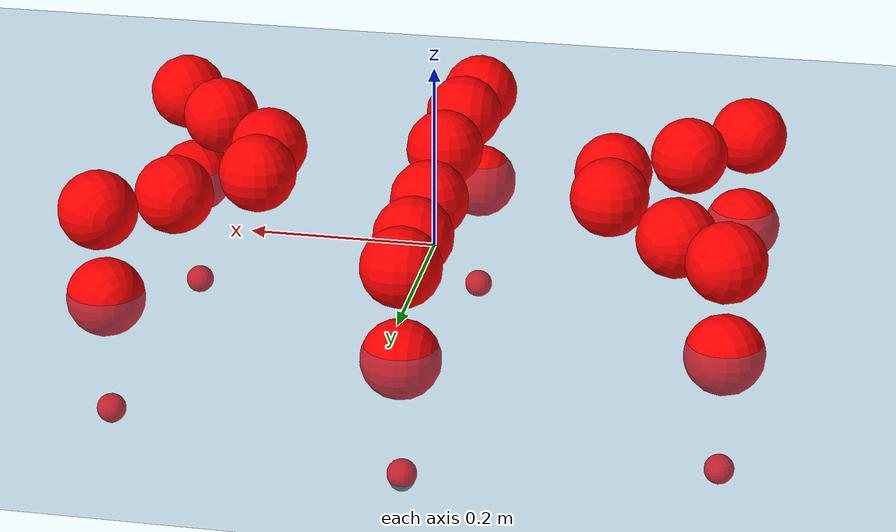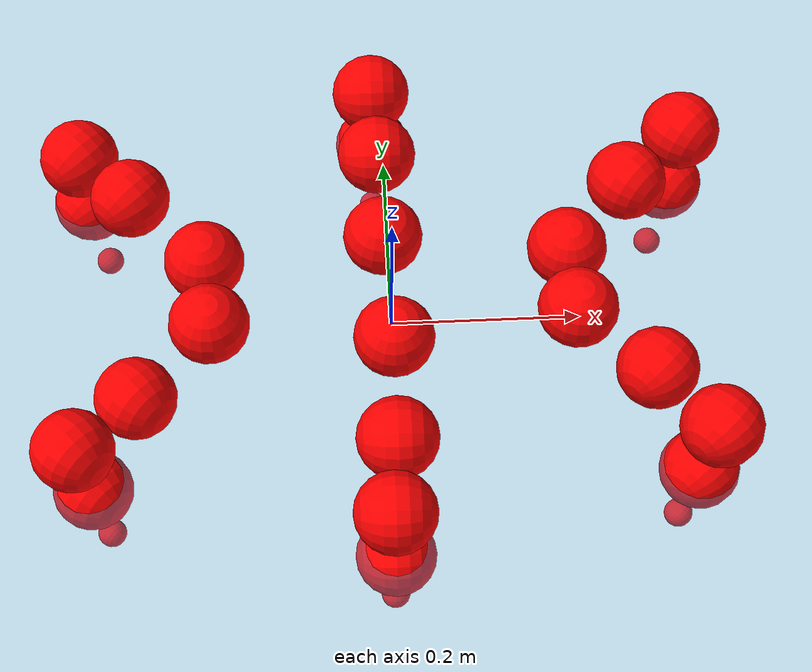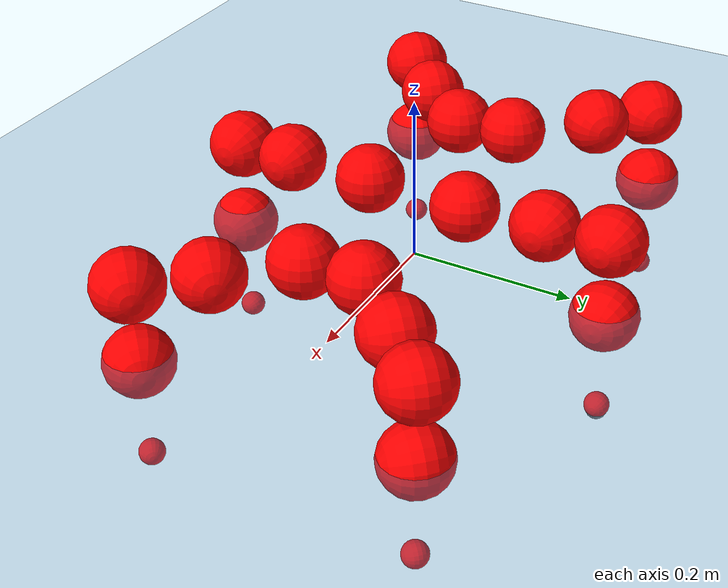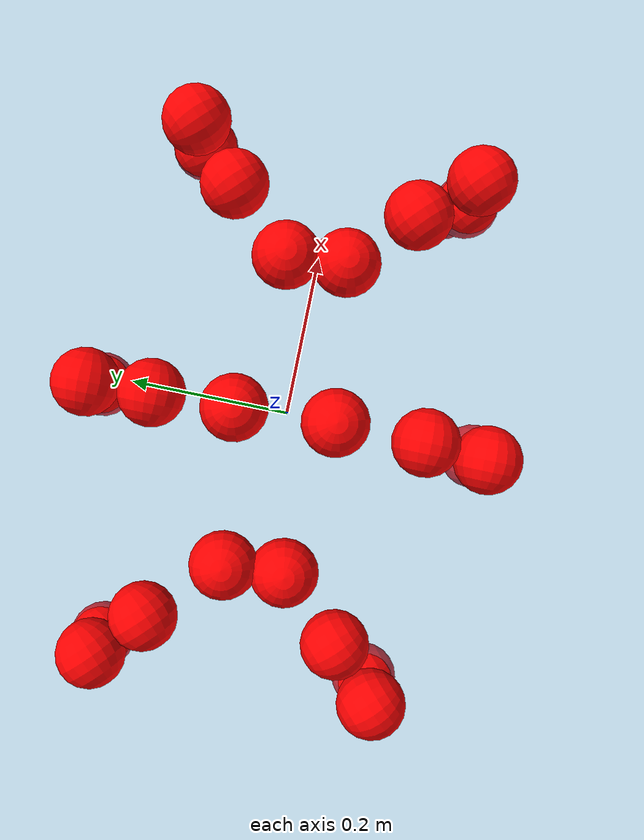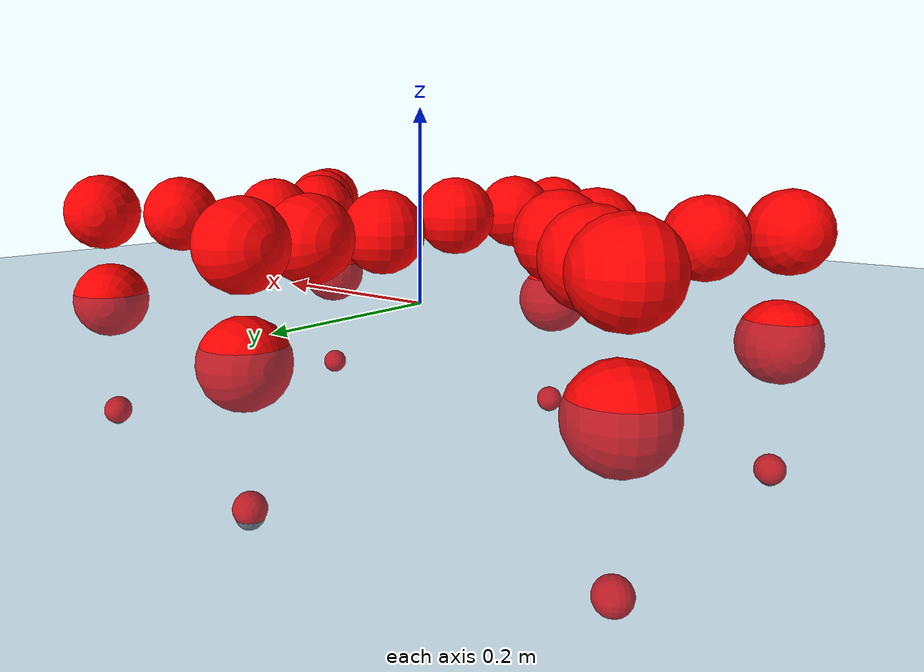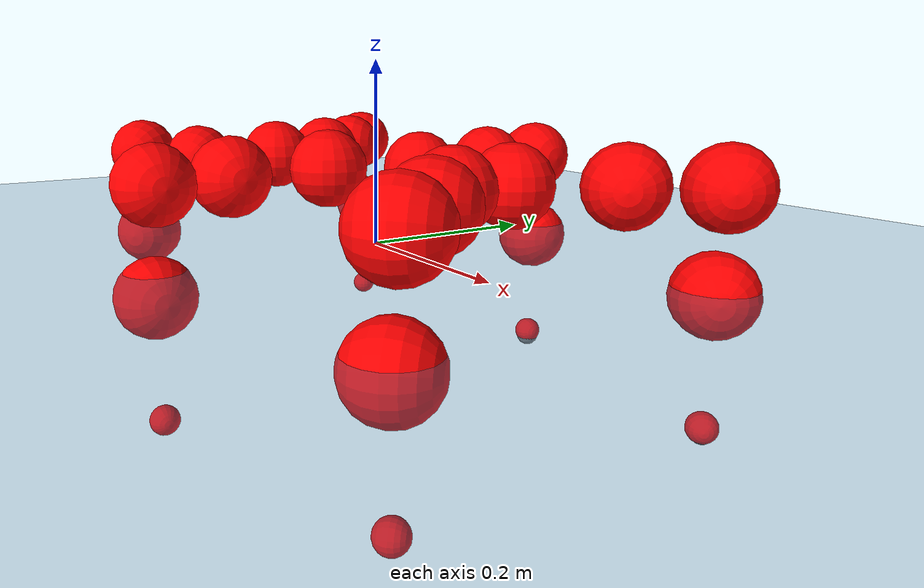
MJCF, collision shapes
<mujoco model="Golem">
  <compiler angle="radian" assetdir="assets" balanceinertia="true" inertiafromgeom="false"/>

  <option timestep="0.005" density="1.2" viscosity="2e-05"/>

  <size nkey="1"/>

  <visual>
    <quality shadowsize="8192"/>
    <map shadowclip="0.5"/>
  </visual>

  <default>
    <default class="/">
      <joint armature="0.01" damping="0.01" frictionloss="0.01"/>
      <geom contype="0" conaffinity="0" group="1" solref="-1000 -80"/>
      <site size="0.01 0.005 0.005" group="5"/>
      <general forcelimited="true" biastype="affine" gainprm="25" biasprm="0 -25 -0.5"/>
      <default class="visual">
        <geom type="mesh" group="2"/>
      </default>
      <default class="collision">
        <geom group="3"/>
      </default>
      <default class="foot">
        <geom size="0.01 0 0" condim="6" group="4" priority="1" solimp="0.015 1 0.01"/>
      </default>
      <default class="reward_collision_sphere">
        <geom group="5" rgba="1 0 0 1"/>
      </default>
    </default>
  </default>

  <asset>
    <texture type="skybox" colorspace="auto" name="//unnamed_texture_0" builtin="gradient" rgb1="0.95 0.95 0.95" rgb2="0.95 0.95 0.95" width="100" height="600"/>
    <texture type="2d" colorspace="auto" name="texplane" builtin="checker" rgb1="0.345 0.575 0.748" rgb2="0.345 0.575 0.748" markrgb="1 1 1" width="512" height="512"/>
    <material name="MatPlane" class="/" texture="texplane" texuniform="true" texrepeat="2 2" specular="0.9"/>
    <mesh name="body" class="/" file="body.stl" scale="0.001 0.001 0.001"/>
    <mesh name="coxa" class="/" file="coxa.stl" scale="0.001 0.001 0.001"/>
    <mesh name="femur" class="/" file="femur.stl" scale="0.001 0.001 0.001"/>
    <mesh name="tibia" class="/" file="tibia.stl" scale="0.001 0.001 0.001"/>
    <mesh name="tarsus" class="/" file="tarsus.stl" scale="0.001 0.001 0.001"/>
  </asset>

  <worldbody>
    <geom name="floor" class="/" size="100 100 0.125" type="plane" group="0" material="MatPlane"/>
    <light name="toplight_shadow" class="/" pos="0 0 5" dir="0.0990148 0.0990148 -0.990148" type="directional" ambient="0.04 0.04 0.04" diffuse="0.55 0.55 0.55" specular="0.12 0.12 0.12"/>
    <light name="toplight_fill" class="/" pos="0 0 5" dir="0.0990148 0.0990148 -0.990148" type="directional" castshadow="false" ambient="0.04 0.04 0.04" diffuse="0.3 0.3 0.3" specular="0.08 0.08 0.08"/>
    <body name="trunk" pos="0.000120388 0.00195341 0.0066308" quat="1 7.47895e-05 2.48533e-05 -0.00022108">
      <inertial pos="-0.000382535 -0.000130507 -0.00629968" quat="0.999901 0.00584181 0.0127122 0.001277" mass="3.9442" diaginertia="0.027776 0.00194056 0.021706"/>
      <joint name="//unnamed_joint_0" type="free"/>
      <geom name="//unnamed_geom_1" class="/" pos="0 0 0.0742647" quat="1 0 0 0" type="mesh" rgba="0.9 0.9 0.9 1" mesh="body"/>
      <site name="imu" class="/" pos="0.166002 -0.0107798 0.124166" size="0.0102735"/>
      <camera name="track" class="/" pos="0 -1.44421 0" quat="0.707107 0.707107 0 0" mode="trackcom"/>
      <camera name="ego_camera" class="/" pos="0.155941 0 0.116039" quat="-0.5 -0.5 0.5 0.5"/>
      <body name="coxa_RR" pos="-0.210575 -0.0620737 0.0776667" quat="0.382363 -0.000679557 -0.000391541 -0.924012">
        <inertial pos="0.000241198 0.00636855 0.00230232" quat="0.999945 0.00307152 0.00957193 0.00283691" mass="0.236847" diaginertia="0.0281422 0.00202566 0.0234913"/>
        <joint name="coxa_joint_RR" class="/" pos="0 0 0" axis="-0.0241065 0.0324101 -0.999184" range="-3.1463 3.18422" armature="0.0108526" damping="0.0184221" frictionloss="0.0114313"/>
        <geom name="//unnamed_geom_2" class="/" type="mesh" rgba="0.2 0.2 0.2 1" mesh="coxa"/>
        <geom name="//unnamed_geom_3" class="reward_collision_sphere" size="0.0410938" pos="-0.0359864 0 0"/>
        <body name="femur_RR" pos="0.0686918 0.00264176 -0.00726399" quat="0.49952 -0.499418 0.500249 0.500811">
          <inertial pos="-0.00221323 -0.00116251 0.000874228" quat="1 -1.25362e-07 3.24029e-07 -2.75941e-07" mass="0.209526" diaginertia="0.023969 0.00192188 0.0206581"/>
          <joint name="femur_joint_RR" class="/" pos="0 0 0" axis="0.000370015 -0.000301342 -1" range="-3.10309 3.24917" armature="0.0113996" damping="0.0311773" frictionloss="0.00891038"/>
          <geom name="//unnamed_geom_4" class="/" type="mesh" rgba="0.9 0.9 0.9 1" mesh="femur"/>
          <geom name="//unnamed_geom_5" class="reward_collision_sphere" size="0.0410938"/>
          <body name="tibia_RR" pos="-0.00561856 -0.0804263 -0.00225323" quat="0.00032607 1 0.000108501 -2.66858e-05">
            <inertial pos="0.00464575 0.00179407 -0.000273131" quat="0.999874 -0.0151295 0.00261227 0.0040245" mass="0.21652" diaginertia="0.0252001 0.00186063 0.0198856"/>
            <joint name="tibia_joint_RR" class="/" pos="0 0 0" axis="-0.00299994 -0.00175494 0.999994" range="-3.01595 3.12749" armature="0.0116656" damping="0.0172982" frictionloss="0.0113916"/>
            <geom name="//unnamed_geom_6" class="/" type="mesh" rgba="0.2 0.2 0.2 1" mesh="tibia"/>
            <geom name="//unnamed_geom_7" class="reward_collision_sphere" size="0.0410938"/>
            <body name="tarsus_RR" pos="0.105816 -0.00238782 -0.00170509" quat="1 0.000105696 -0.000585578 0.000567312">
              <inertial pos="0.0763969 -0.00519208 0.00282955" quat="0.499546 0.503198 0.498158 0.499082" mass="0.224024" diaginertia="0.0252429 0.00200158 0.021424"/>
              <joint name="tarsus_joint_RR" class="/" pos="0 0 0" axis="-0.00925359 -6.91731e-05 0.999957" stiffness="0.0349186" range="-3.08968 3.1291" armature="0.00858597" damping="0.0182168" frictionloss="0.00845029"/>
              <geom name="//unnamed_geom_8" class="/" type="mesh" rgba="0.9 0.9 0.9 1" mesh="tarsus"/>
              <geom name="foot_1" class="foot" size="0.0110988" pos="0.134349 0 0" quat="0 -0.707107 0 0.707107"/>
              <geom name="//unnamed_geom_10" class="reward_collision_sphere" size="0.0410938"/>
              <geom name="//unnamed_geom_11" class="reward_collision_sphere" size="0.0154102" pos="0.128951 0 0"/>
              <site name="foot_1" class="foot" pos="0.134349 0 0" quat="0 -0.707107 0 0.707107" size="0.0102735"/>
            </body>
          </body>
        </body>
      </body>
      <body name="coxa_RM" pos="-0.000370419 -0.0965568 0.0808685" quat="0.705369 0.00148277 0.00208978 -0.708836">
        <inertial pos="0.00478908 -0.000394315 4.61662e-05" quat="0.999936 -0.00109442 0.0100425 0.00510224" mass="0.221984" diaginertia="0.0265792 0.0020297 0.0204634"/>
        <joint name="coxa_joint_RM" class="/" pos="0 0 0" axis="-0.00326543 0.00244233 -0.999992" range="-2.99405 3.14167" armature="0.00954555" damping="0.00409149" frictionloss="0.0100061"/>
        <geom name="//unnamed_geom_12" class="/" type="mesh" rgba="0.2 0.2 0.2 1" mesh="coxa"/>
        <geom name="//unnamed_geom_13" class="reward_collision_sphere" size="0.0410938" pos="-0.0359864 0 0"/>
        <body name="femur_RM" pos="0.0726391 -0.00104477 -0.000985641" quat="0.498569 -0.499034 0.50062 0.501771">
          <inertial pos="-0.00024245 -0.000574784 0.000428854" quat="0.999705 0.020334 0.00228196 0.013101" mass="0.204834" diaginertia="0.0237445 0.001952 0.0195359"/>
          <joint name="femur_joint_RM" class="/" pos="0 0 0" axis="-0.00560746 0.00665464 -0.999962" stiffness="0.031503" range="-3.15897 3.1383" armature="0.0114176" damping="0.0162093" frictionloss="0.00999555"/>
          <geom name="//unnamed_geom_14" class="/" type="mesh" rgba="0.9 0.9 0.9 1" mesh="femur"/>
          <geom name="//unnamed_geom_15" class="reward_collision_sphere" size="0.0410938"/>
          <body name="tibia_RM" pos="0.00246325 -0.0757204 -0.00518324" quat="0.000383387 0.999999 -0.000340911 0.00112951">
            <inertial pos="-0.00166755 -0.00792793 0.00189228" quat="0.999951 -0.00445704 0.00788687 -0.00405951" mass="0.20073" diaginertia="0.0232025 0.00180077 0.0190889"/>
            <joint name="tibia_joint_RM" class="/" pos="0 0 0" axis="0.00658347 -0.00175958 0.999977" range="-3.18995 3.30178" armature="0.00984636" damping="0.0346762" frictionloss="0.0111971"/>
            <geom name="//unnamed_geom_16" class="/" type="mesh" rgba="0.2 0.2 0.2 1" mesh="tibia"/>
            <geom name="//unnamed_geom_17" class="reward_collision_sphere" size="0.0410938"/>
            <body name="tarsus_RM" pos="0.110372 0.00550557 -0.000721232" quat="0.999999 0.000991042 0.000574055 -0.000880001">
              <inertial pos="0.0724707 -0.00677842 0.00107424" quat="0.500411 0.499188 0.500137 0.500263" mass="0.244846" diaginertia="0.0257009 0.00208339 0.0218729"/>
              <joint name="tarsus_joint_RM" class="/" pos="0 0 0" axis="0.00156967 -0.00485581 0.999987" range="-3.1573 3.09717" armature="0.00959784" damping="0.00380357" frictionloss="0.0101062"/>
              <geom name="//unnamed_geom_18" class="/" type="mesh" rgba="0.9 0.9 0.9 1" mesh="tarsus"/>
              <geom name="foot_2" class="foot" size="0.0105227" pos="0.134349 0 0" quat="0 -0.707107 0 0.707107"/>
              <geom name="//unnamed_geom_20" class="reward_collision_sphere" size="0.0410938"/>
              <geom name="//unnamed_geom_21" class="reward_collision_sphere" size="0.0154102" pos="0.128951 0 0"/>
              <site name="foot_2" class="foot" pos="0.134349 0 0" quat="0 -0.707107 0 0.707107" size="0.0102735"/>
            </body>
          </body>
        </body>
      </body>
      <body name="coxa_RF" pos="0.211909 -0.0608272 0.0797361" quat="0.923986 -0.000828507 0.000393556 -0.382424">
        <inertial pos="0.00529726 0.00199312 -0.00396173" quat="0.999982 -0.0046062 0.00288223 -0.00239928" mass="0.198083" diaginertia="0.0228715 0.00194559 0.0194368"/>
        <joint name="coxa_joint_RF" class="/" pos="0 0 0" axis="-0.00741948 0.00183369 -0.999971" range="-3.11083 3.13433" armature="0.0123419" damping="0" frictionloss="0.00937316"/>
        <geom name="//unnamed_geom_22" class="/" type="mesh" rgba="0.2 0.2 0.2 1" mesh="coxa"/>
        <geom name="//unnamed_geom_23" class="reward_collision_sphere" size="0.0410938" pos="-0.0359864 0 0"/>
        <body name="femur_RF" pos="0.0650713 -0.000425264 0.00236822" quat="0.500775 -0.497924 0.500237 0.501058">
          <inertial pos="-0.00230005 1.43691e-05 0.00213053" quat="0.999936 0.00826048 -0.00167771 -0.00750209" mass="0.250625" diaginertia="0.025107 0.00211566 0.0234111"/>
          <joint name="femur_joint_RF" class="/" pos="0 0 0" axis="-0.00794833 0.00289285 -0.999964" stiffness="0.0344764" range="-3.12869 3.25955" armature="0.0139962" damping="0.0176142" frictionloss="0.0140113"/>
          <geom name="//unnamed_geom_24" class="/" type="mesh" rgba="0.9 0.9 0.9 1" mesh="femur"/>
          <geom name="//unnamed_geom_25" class="reward_collision_sphere" size="0.0410938"/>
          <body name="tibia_RF" pos="0.000273014 -0.0843965 -0.00670786" quat="2.45295e-05 1 -0.000127212 -7.9485e-05">
            <inertial pos="0.00557612 -0.00164389 0.000578795" quat="0.99996 -0.00796616 0.00413027 -0.000668562" mass="0.228112" diaginertia="0.0265782 0.00200623 0.02163"/>
            <joint name="tibia_joint_RF" class="/" pos="0 0 0" axis="0.00361178 0.00200686 0.999991" stiffness="0.000174873" range="-3.17612 3.17098" armature="0.0108382" damping="0.0305222" frictionloss="0.00958187"/>
            <geom name="//unnamed_geom_26" class="/" type="mesh" rgba="0.2 0.2 0.2 1" mesh="tibia"/>
            <geom name="//unnamed_geom_27" class="reward_collision_sphere" size="0.0410938"/>
            <body name="tarsus_RF" pos="0.103051 -0.00125372 0.005324" quat="0.999999 0.00074002 -0.00109608 -0.000402252">
              <inertial pos="0.0769061 0.00132553 -0.00152681" quat="0.490793 0.471433 0.518954 0.517262" mass="0.223761" diaginertia="0.0250177 0.00191195 0.022966"/>
              <joint name="tarsus_joint_RF" class="/" pos="0 0 0" axis="-0.00212131 0.00421241 0.999989" stiffness="0.00342571" range="-3.17408 3.12396" armature="0.0134774" damping="0.00482008" frictionloss="0.0126369"/>
              <geom name="//unnamed_geom_28" class="/" type="mesh" rgba="0.9 0.9 0.9 1" mesh="tarsus"/>
              <geom name="foot_3" class="foot" size="0.0100868" pos="0.134349 0 0" quat="0 -0.707107 0 0.707107"/>
              <geom name="//unnamed_geom_30" class="reward_collision_sphere" size="0.0410938"/>
              <geom name="//unnamed_geom_31" class="reward_collision_sphere" size="0.0154102" pos="0.128951 0 0"/>
              <site name="foot_3" class="foot" pos="0.134349 0 0" quat="0 -0.707107 0 0.707107" size="0.0102735"/>
            </body>
          </body>
        </body>
      </body>
      <body name="coxa_LR" pos="-0.215812 0.0603017 0.0792479" quat="0.382884 -0.000778492 -2.26194e-05 0.923796">
        <inertial pos="0.000829347 0.000222843 -0.00125216" quat="0.999493 -0.0217141 0.0218365 0.00807425" mass="0.208756" diaginertia="0.0250523 0.00182333 0.020946"/>
        <joint name="coxa_joint_LR" class="/" pos="0 0 0" axis="0.00189874 -0.000125031 -0.999998" range="-3.15424 3.13413" armature="0.00819877" damping="0.0220574" frictionloss="0.010699"/>
        <geom name="//unnamed_geom_32" class="/" type="mesh" rgba="0.2 0.2 0.2 1" mesh="coxa"/>
        <geom name="//unnamed_geom_33" class="reward_collision_sphere" size="0.0410938" pos="-0.0359864 0 0"/>
        <body name="femur_LR" pos="0.076565 -0.00171622 -0.00371825" quat="0.499583 -0.499101 0.500982 0.500332">
          <inertial pos="0.00450473 0.00605587 -0.00601334" quat="0.999998 0.000985979 0.00142081 -0.000209516" mass="0.198921" diaginertia="0.024378 0.0018187 0.0205574"/>
          <joint name="femur_joint_LR" class="/" pos="0 0 0" axis="-0.0339077 0.000265052 0.999425" stiffness="0.00306721" range="-3.08668 3.2051" armature="0.00606384" damping="0.0217535" frictionloss="0.012536"/>
          <geom name="//unnamed_geom_34" class="/" type="mesh" rgba="0.9 0.9 0.9 1" mesh="femur"/>
          <geom name="//unnamed_geom_35" class="reward_collision_sphere" size="0.0410938"/>
          <body name="tibia_LR" pos="-0.000607429 -0.0750554 0.00267209" quat="-2.68726e-06 0.999999 0.000736311 0.000956024">
            <inertial pos="-0.000223691 0.00608367 -0.00105993" quat="0.999994 0.00345455 -0.000125453 0.000198293" mass="0.233815" diaginertia="0.0261981 0.00200542 0.0235752"/>
            <joint name="tibia_joint_LR" class="/" pos="0 0 0" axis="0.00802086 0.0267306 -0.99961" stiffness="0.0268771" range="-3.14433 3.24426" armature="0.0101424" damping="0.0264719" frictionloss="0.00895526"/>
            <geom name="//unnamed_geom_36" class="/" type="mesh" rgba="0.2 0.2 0.2 1" mesh="tibia"/>
            <geom name="//unnamed_geom_37" class="reward_collision_sphere" size="0.0410938"/>
            <body name="tarsus_LR" pos="0.0979547 0.0056288 0.00171814" quat="0.999999 0.000863053 -0.000420858 0.00064527">
              <inertial pos="0.0712184 0.000275723 0.00346865" quat="0.50574 0.493741 0.500901 0.499545" mass="0.221498" diaginertia="0.0251304 0.0019207 0.0214525"/>
              <joint name="tarsus_joint_LR" class="/" pos="0 0 0" axis="-0.0157888 -0.0144765 -0.999771" stiffness="0.00853954" range="-3.07119 3.10207" armature="0.0125937" damping="0.0328868" frictionloss="0.00944997"/>
              <geom name="//unnamed_geom_38" class="/" type="mesh" rgba="0.9 0.9 0.9 1" mesh="tarsus"/>
              <geom name="foot_4" class="foot" size="0.0103774" pos="0.134349 0 0" quat="0.707107 0 -0.707107 0"/>
              <geom name="//unnamed_geom_40" class="reward_collision_sphere" size="0.0410938"/>
              <geom name="//unnamed_geom_41" class="reward_collision_sphere" size="0.0154102" pos="0.128951 0 0"/>
              <site name="foot_4" class="foot" pos="0.134349 0 0" quat="0.707107 0 -0.707107 0" size="0.0102735"/>
            </body>
          </body>
        </body>
      </body>
      <body name="coxa_LM" pos="-0.00656633 0.096339 0.0731434" quat="0.706967 0.000246587 -0.000410801 0.707246">
        <inertial pos="-0.0017462 0.000989307 0.000831247" quat="0.999992 0.0012124 0.00316033 0.00200437" mass="0.223141" diaginertia="0.0229664 0.00191639 0.0209042"/>
        <joint name="coxa_joint_LM" class="/" pos="0 0 0" axis="-0.0223838 0.0157699 -0.999625" range="-3.14059 2.99516" armature="0.0104539" damping="0.0199877" frictionloss="0.0100313"/>
        <geom name="//unnamed_geom_42" class="/" type="mesh" rgba="0.2 0.2 0.2 1" mesh="coxa"/>
        <geom name="//unnamed_geom_43" class="reward_collision_sphere" size="0.0410938" pos="-0.0359864 0 0"/>
        <body name="femur_LM" pos="0.0628491 0.00244753 0.00160519" quat="0.499194 -0.499962 0.498895 0.501944">
          <inertial pos="-0.00308944 -0.00248909 0.00249195" quat="0.999989 0.00309626 -0.00358168 -0.000257005" mass="0.190751" diaginertia="0.0230875 0.00185811 0.0191201"/>
          <joint name="femur_joint_LM" class="/" pos="0 0 0" axis="-0.00700389 0.0157171 0.999852" range="-3.02341 3.25303" armature="0.0107327" damping="0" frictionloss="0.00895942"/>
          <geom name="//unnamed_geom_44" class="/" type="mesh" rgba="0.9 0.9 0.9 1" mesh="femur"/>
          <geom name="//unnamed_geom_45" class="reward_collision_sphere" size="0.0410938"/>
          <body name="tibia_LM" pos="-0.00144404 -0.0782837 0.00268451" quat="-0.000157264 1 -0.000266013 0.000649149">
            <inertial pos="-0.00248288 -0.000879609 0.00135038" quat="0.999995 8.93913e-05 0.00260928 0.00198893" mass="0.213538" diaginertia="0.024177 0.00209988 0.0202567"/>
            <joint name="tibia_joint_LM" class="/" pos="0 0 0" axis="-0.0116116 -0.00340011 -0.999927" stiffness="0.0392939" range="-3.16894 3.15061" armature="0.0131391" damping="0.0329986" frictionloss="0.00963739"/>
            <geom name="//unnamed_geom_46" class="/" type="mesh" rgba="0.2 0.2 0.2 1" mesh="tibia"/>
            <geom name="//unnamed_geom_47" class="reward_collision_sphere" size="0.0410938"/>
            <body name="tarsus_LM" pos="0.10022 -0.0003336 0.00116802" quat="1 0.000201896 0.000108246 -0.000204723">
              <inertial pos="0.0712828 -0.000446429 -0.00395023" quat="0.499582 0.501932 0.500407 0.498072" mass="0.217258" diaginertia="0.0269946 0.00186582 0.0209877"/>
              <joint name="tarsus_joint_LM" class="/" pos="0 0 0" axis="-0.0144917 -0.00913544 -0.999853" stiffness="0.0153156" range="-3.16249 3.17578" armature="0.00923882" damping="0" frictionloss="0.0103391"/>
              <geom name="//unnamed_geom_48" class="/" type="mesh" rgba="0.9 0.9 0.9 1" mesh="tarsus"/>
              <geom name="foot_5" class="foot" size="0.0132696" pos="0.134349 0 0" quat="0.707107 0 -0.707107 0"/>
              <geom name="//unnamed_geom_50" class="reward_collision_sphere" size="0.0410938"/>
              <geom name="//unnamed_geom_51" class="reward_collision_sphere" size="0.0154102" pos="0.128951 0 0"/>
              <site name="foot_5" class="foot" pos="0.134349 0 0" quat="0.707107 0 -0.707107 0" size="0.0102735"/>
            </body>
          </body>
        </body>
      </body>
      <body name="coxa_LF" pos="0.207032 0.0616214 0.0781013" quat="0.923145 -0.000249906 -0.00232931 0.384445">
        <inertial pos="0.000521137 0.00134443 -0.00372992" quat="0.999971 0.00358966 -0.00180836 -0.00649797" mass="0.214876" diaginertia="0.0241465 0.00215826 0.0211489"/>
        <joint name="coxa_joint_LF" class="/" pos="0 0 0" axis="0.0130314 -0.0171831 -0.999767" range="-3.09552 3.18593" armature="0.0113265" damping="0.0218151" frictionloss="0.0124108"/>
        <geom name="//unnamed_geom_52" class="/" type="mesh" rgba="0.2 0.2 0.2 1" mesh="coxa"/>
        <geom name="//unnamed_geom_53" class="reward_collision_sphere" size="0.0410938" pos="-0.0359864 0 0"/>
        <body name="femur_LF" pos="0.0670143 0.00432055 0.0017457" quat="0.499905 -0.500038 0.500029 0.500028">
          <inertial pos="-0.000567423 0.00118894 -0.00583183" quat="0.999919 0.00401294 -0.0062575 0.0103152" mass="0.195912" diaginertia="0.0261235 0.00193574 0.0209947"/>
          <joint name="femur_joint_LF" class="/" pos="0 0 0" axis="0.0134694 0.00989449 0.99986" range="-3.09255 3.15121" armature="0.0100314" damping="0.0123094" frictionloss="0.00771381"/>
          <geom name="//unnamed_geom_54" class="/" type="mesh" rgba="0.9 0.9 0.9 1" mesh="femur"/>
          <geom name="//unnamed_geom_55" class="reward_collision_sphere" size="0.0410938"/>
          <body name="tibia_LF" pos="-0.00203947 -0.086629 -0.00431715" quat="-0.000477913 0.999995 0.00279142 -0.00159">
            <inertial pos="0.00222022 -0.00337009 0.00388239" quat="0.999516 0.00907087 0.0198053 -0.0221992" mass="0.200048" diaginertia="0.0237368 0.00193943 0.0209032"/>
            <joint name="tibia_joint_LF" class="/" pos="0 0 0" axis="-0.00183721 -0.000941632 -0.999998" stiffness="0.0226036" range="-3.29793 3.13572" armature="0.00912649" damping="0" frictionloss="0.0101813"/>
            <geom name="//unnamed_geom_56" class="/" type="mesh" rgba="0.2 0.2 0.2 1" mesh="tibia"/>
            <geom name="//unnamed_geom_57" class="reward_collision_sphere" size="0.0410938"/>
            <body name="tarsus_LF" pos="0.0983911 -0.00401123 -0.000799636" quat="1 0.000224509 -9.45174e-05 0.00021871">
              <inertial pos="0.0787361 -0.000369139 0.000551721" quat="0.497949 0.501183 0.499546 0.501315" mass="0.22878" diaginertia="0.0260311 0.00207749 0.0200507"/>
              <joint name="tarsus_joint_LF" class="/" pos="0 0 0" axis="0.021408 0.0113509 -0.999706" stiffness="0.0221225" range="-3.13162 3.2214" armature="0.00738462" damping="0.0148299" frictionloss="0.00641218"/>
              <geom name="//unnamed_geom_58" class="/" type="mesh" rgba="0.9 0.9 0.9 1" mesh="tarsus"/>
              <geom name="foot_6" class="foot" size="0.0110063" pos="0.134349 0 0" quat="0.707107 0 -0.707107 0"/>
              <geom name="//unnamed_geom_60" class="reward_collision_sphere" size="0.0410938"/>
              <geom name="//unnamed_geom_61" class="reward_collision_sphere" size="0.0154102" pos="0.128951 0 0"/>
              <site name="foot_6" class="foot" pos="0.134349 0 0" quat="0.707107 0 -0.707107 0" size="0.0102735"/>
            </body>
          </body>
        </body>
      </body>
    </body>
  </worldbody>

  <contact>
    <pair class="/" geom1="floor" geom2="foot_1" name="//unnamed_contact_0"/>
    <pair class="/" geom1="floor" geom2="foot_2" name="//unnamed_contact_1"/>
    <pair class="/" geom1="floor" geom2="foot_3" name="//unnamed_contact_2"/>
    <pair class="/" geom1="floor" geom2="foot_4" name="//unnamed_contact_3"/>
    <pair class="/" geom1="floor" geom2="foot_5" name="//unnamed_contact_4"/>
    <pair class="/" geom1="floor" geom2="foot_6" name="//unnamed_contact_5"/>
  </contact>

  <actuator>
    <general name="coxa_joint_RR" class="/" joint="coxa_joint_RR" forcerange="-6.98803 6.98803" gainprm="25.7633" biasprm="0 -25.7633 -0.527264"/>
    <general name="femur_joint_RR" class="/" joint="femur_joint_RR" forcerange="-6.63142 6.63142" gainprm="25.7633" biasprm="0 -25.7633 -0.527264"/>
    <general name="tibia_joint_RR" class="/" joint="tibia_joint_RR" forcerange="-8.46969 8.46969" gainprm="25.7633" biasprm="0 -25.7633 -0.527264"/>
    <general name="tarsus_joint_RR" class="/" joint="tarsus_joint_RR" forcerange="-8.66509 8.66509" gainprm="25.7633" biasprm="0 -25.7633 -0.527264"/>
    <general name="coxa_joint_RM" class="/" joint="coxa_joint_RM" forcerange="-9.13002 9.13002" gainprm="25.7633" biasprm="0 -25.7633 -0.527264"/>
    <general name="femur_joint_RM" class="/" joint="femur_joint_RM" forcerange="-8.11266 8.11266" gainprm="25.7633" biasprm="0 -25.7633 -0.527264"/>
    <general name="tibia_joint_RM" class="/" joint="tibia_joint_RM" forcerange="-7.35959 7.35959" gainprm="25.7633" biasprm="0 -25.7633 -0.527264"/>
    <general name="tarsus_joint_RM" class="/" joint="tarsus_joint_RM" forcerange="-7.01735 7.01735" gainprm="25.7633" biasprm="0 -25.7633 -0.527264"/>
    <general name="coxa_joint_RF" class="/" joint="coxa_joint_RF" forcerange="-8.1051 8.1051" gainprm="25.7633" biasprm="0 -25.7633 -0.527264"/>
    <general name="femur_joint_RF" class="/" joint="femur_joint_RF" forcerange="-5.3129 5.3129" gainprm="25.7633" biasprm="0 -25.7633 -0.527264"/>
    <general name="tibia_joint_RF" class="/" joint="tibia_joint_RF" forcerange="-5.78346 5.78346" gainprm="25.7633" biasprm="0 -25.7633 -0.527264"/>
    <general name="tarsus_joint_RF" class="/" joint="tarsus_joint_RF" forcerange="-5.9957 5.9957" gainprm="25.7633" biasprm="0 -25.7633 -0.527264"/>
    <general name="coxa_joint_LR" class="/" joint="coxa_joint_LR" forcerange="-7.30419 7.30419" gainprm="25.7633" biasprm="0 -25.7633 -0.527264"/>
    <general name="femur_joint_LR" class="/" joint="femur_joint_LR" forcerange="-7.68214 7.68214" gainprm="25.7633" biasprm="0 -25.7633 -0.527264"/>
    <general name="tibia_joint_LR" class="/" joint="tibia_joint_LR" forcerange="-5.42617 5.42617" gainprm="25.7633" biasprm="0 -25.7633 -0.527264"/>
    <general name="tarsus_joint_LR" class="/" joint="tarsus_joint_LR" forcerange="-5.78383 5.78383" gainprm="25.7633" biasprm="0 -25.7633 -0.527264"/>
    <general name="coxa_joint_LM" class="/" joint="coxa_joint_LM" forcerange="-8.00322 8.00322" gainprm="25.7633" biasprm="0 -25.7633 -0.527264"/>
    <general name="femur_joint_LM" class="/" joint="femur_joint_LM" forcerange="-6.87285 6.87285" gainprm="25.7633" biasprm="0 -25.7633 -0.527264"/>
    <general name="tibia_joint_LM" class="/" joint="tibia_joint_LM" forcerange="-7.51432 7.51432" gainprm="25.7633" biasprm="0 -25.7633 -0.527264"/>
    <general name="tarsus_joint_LM" class="/" joint="tarsus_joint_LM" forcerange="-7.36637 7.36637" gainprm="25.7633" biasprm="0 -25.7633 -0.527264"/>
    <general name="coxa_joint_LF" class="/" joint="coxa_joint_LF" forcerange="-7.66206 7.66206" gainprm="25.7633" biasprm="0 -25.7633 -0.527264"/>
    <general name="femur_joint_LF" class="/" joint="femur_joint_LF" forcerange="-6.07512 6.07512" gainprm="25.7633" biasprm="0 -25.7633 -0.527264"/>
    <general name="tibia_joint_LF" class="/" joint="tibia_joint_LF" forcerange="-6.27248 6.27248" gainprm="25.7633" biasprm="0 -25.7633 -0.527264"/>
    <general name="tarsus_joint_LF" class="/" joint="tarsus_joint_LF" forcerange="-8.10989 8.10989" gainprm="25.7633" biasprm="0 -25.7633 -0.527264"/>
  </actuator>

  <sensor>
    <gyro site="imu" name="imu_angular_velocity"/>
    <velocimeter site="imu" name="imu_linear_velocity"/>
    <framelinvel objtype="site" objname="foot_1" name="foot_1_global_linear_velocity"/>
    <framelinvel objtype="site" objname="foot_2" name="foot_2_global_linear_velocity"/>
    <framelinvel objtype="site" objname="foot_3" name="foot_3_global_linear_velocity"/>
    <framelinvel objtype="site" objname="foot_4" name="foot_4_global_linear_velocity"/>
    <framelinvel objtype="site" objname="foot_5" name="foot_5_global_linear_velocity"/>
    <framelinvel objtype="site" objname="foot_6" name="foot_6_global_linear_velocity"/>
  </sensor>

  <keyframe>
    <key name="home" qpos="0 0 0.1457 1 0 0 0 0 0 0 0 0 0 0 0 0 0 0 0 0 0 0 0 0 0 0 0 0 0 0 0"/>
  </keyframe>
</mujoco>
